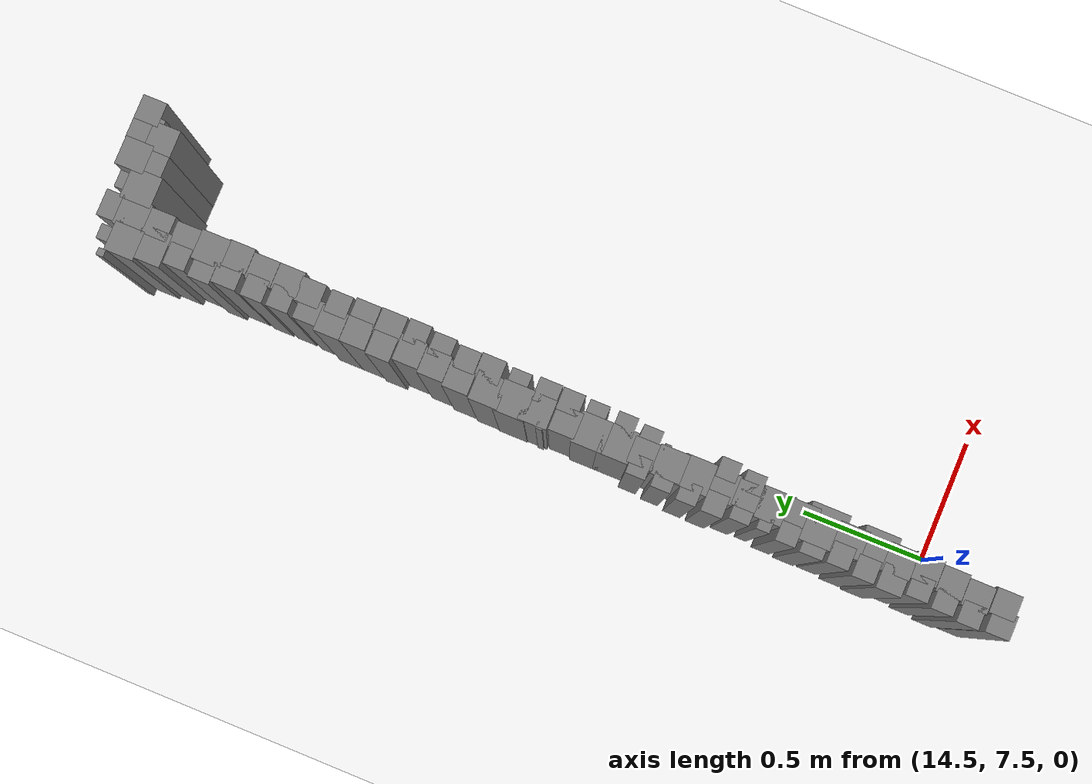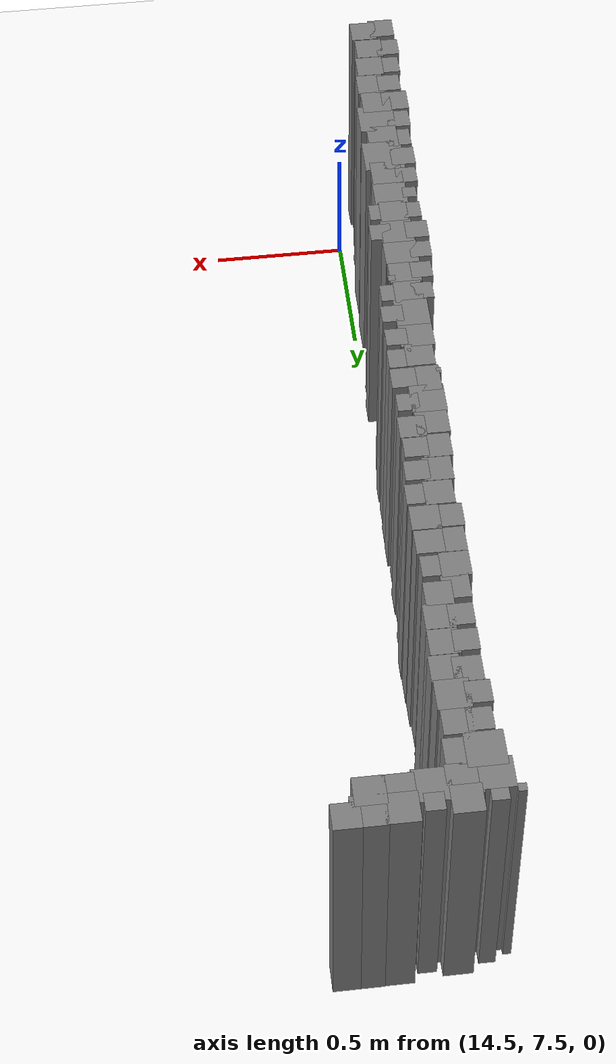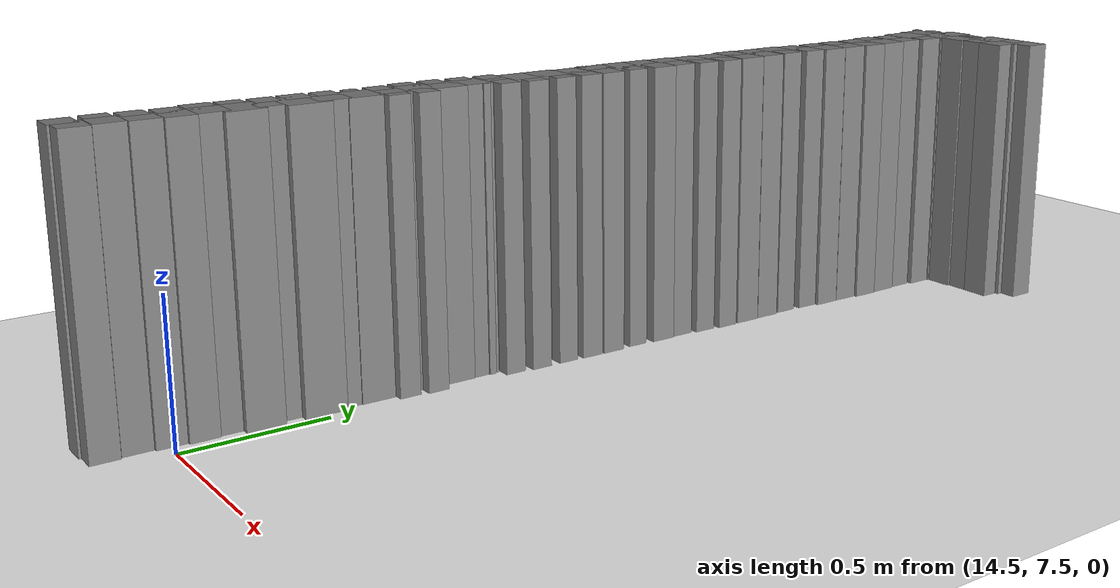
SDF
<sdf version="1.6">
 <world name="default">
  <model name="group_418">
   <pose>14.33 10.76 0.5 0 0 0</pose>
   <static>true</static>
   <link name="link">
    <collision name="collision">
     <geometry><box><size>0.02814025255821355 0.02814025255821355 1</size></box></geometry>
    </collision>
    <visual name="visual">
     <geometry><box><size>0.02814025255821355 0.02814025255821355 1</size></box></geometry>
     <material><ambient>0.5 0.5 0.5 1</ambient></material>
    </visual>
   </link>
  </model>
  <model name="group_419">
   <pose>14.42 10.61 0.5 0 0 0</pose>
   <static>true</static>
   <link name="link">
    <collision name="collision">
     <geometry><box><size>0.1268839573795072 0.1268839573795072 1</size></box></geometry>
    </collision>
    <visual name="visual">
     <geometry><box><size>0.1268839573795072 0.1268839573795072 1</size></box></geometry>
     <material><ambient>0.5 0.5 0.5 1</ambient></material>
    </visual>
   </link>
  </model>
  <model name="group_420">
   <pose>14.40 10.70 0.5 0 0 0</pose>
   <static>true</static>
   <link name="link">
    <collision name="collision">
     <geometry><box><size>0.11218382099302744 0.11218382099302744 1</size></box></geometry>
    </collision>
    <visual name="visual">
     <geometry><box><size>0.11218382099302744 0.11218382099302744 1</size></box></geometry>
     <material><ambient>0.5 0.5 0.5 1</ambient></material>
    </visual>
   </link>
  </model>
  <model name="group_421">
   <pose>14.40 10.77 0.5 0 0 0</pose>
   <static>true</static>
   <link name="link">
    <collision name="collision">
     <geometry><box><size>0.0562805051164271 0.0562805051164271 1</size></box></geometry>
    </collision>
    <visual name="visual">
     <geometry><box><size>0.0562805051164271 0.0562805051164271 1</size></box></geometry>
     <material><ambient>0.5 0.5 0.5 1</ambient></material>
    </visual>
   </link>
  </model>
  <model name="group_424">
   <pose>14.43 10.31 0.5 0 0 0</pose>
   <static>true</static>
   <link name="link">
    <collision name="collision">
     <geometry><box><size>0.09529608509633855 0.09529608509633855 1</size></box></geometry>
    </collision>
    <visual name="visual">
     <geometry><box><size>0.09529608509633855 0.09529608509633855 1</size></box></geometry>
     <material><ambient>0.5 0.5 0.5 1</ambient></material>
    </visual>
   </link>
  </model>
  <model name="group_425">
   <pose>14.41 10.40 0.5 0 0 0</pose>
   <static>true</static>
   <link name="link">
    <collision name="collision">
     <geometry><box><size>0.08368096618929591 0.08368096618929591 1</size></box></geometry>
    </collision>
    <visual name="visual">
     <geometry><box><size>0.08368096618929591 0.08368096618929591 1</size></box></geometry>
     <material><ambient>0.5 0.5 0.5 1</ambient></material>
    </visual>
   </link>
  </model>
  <model name="group_426">
   <pose>14.42 10.50 0.5 0 0 0</pose>
   <static>true</static>
   <link name="link">
    <collision name="collision">
     <geometry><box><size>0.08368096618929446 0.08368096618929446 1</size></box></geometry>
    </collision>
    <visual name="visual">
     <geometry><box><size>0.08368096618929446 0.08368096618929446 1</size></box></geometry>
     <material><ambient>0.5 0.5 0.5 1</ambient></material>
    </visual>
   </link>
  </model>
  <model name="group_427">
   <pose>14.40 9.70 0.5 0 0 0</pose>
   <static>true</static>
   <link name="link">
    <collision name="collision">
     <geometry><box><size>0.09244449216996942 0.09244449216996942 1</size></box></geometry>
    </collision>
    <visual name="visual">
     <geometry><box><size>0.09244449216996942 0.09244449216996942 1</size></box></geometry>
     <material><ambient>0.5 0.5 0.5 1</ambient></material>
    </visual>
   </link>
  </model>
  <model name="group_428">
   <pose>14.41 9.80 0.5 0 0 0</pose>
   <static>true</static>
   <link name="link">
    <collision name="collision">
     <geometry><box><size>0.09919226406566595 0.09919226406566595 1</size></box></geometry>
    </collision>
    <visual name="visual">
     <geometry><box><size>0.09919226406566595 0.09919226406566595 1</size></box></geometry>
     <material><ambient>0.5 0.5 0.5 1</ambient></material>
    </visual>
   </link>
  </model>
  <model name="group_429">
   <pose>14.41 9.90 0.5 0 0 0</pose>
   <static>true</static>
   <link name="link">
    <collision name="collision">
     <geometry><box><size>0.09919226406567594 0.09919226406567594 1</size></box></geometry>
    </collision>
    <visual name="visual">
     <geometry><box><size>0.09919226406567594 0.09919226406567594 1</size></box></geometry>
     <material><ambient>0.5 0.5 0.5 1</ambient></material>
    </visual>
   </link>
  </model>
  <model name="group_430">
   <pose>14.42 9.99 0.5 0 0 0</pose>
   <static>true</static>
   <link name="link">
    <collision name="collision">
     <geometry><box><size>0.09260882163759007 0.09260882163759007 1</size></box></geometry>
    </collision>
    <visual name="visual">
     <geometry><box><size>0.09260882163759007 0.09260882163759007 1</size></box></geometry>
     <material><ambient>0.5 0.5 0.5 1</ambient></material>
    </visual>
   </link>
  </model>
  <model name="group_431">
   <pose>14.42 10.10 0.5 0 0 0</pose>
   <static>true</static>
   <link name="link">
    <collision name="collision">
     <geometry><box><size>0.08368096618929412 0.08368096618929412 1</size></box></geometry>
    </collision>
    <visual name="visual">
     <geometry><box><size>0.08368096618929412 0.08368096618929412 1</size></box></geometry>
     <material><ambient>0.5 0.5 0.5 1</ambient></material>
    </visual>
   </link>
  </model>
  <model name="group_432">
   <pose>14.42 10.20 0.5 0 0 0</pose>
   <static>true</static>
   <link name="link">
    <collision name="collision">
     <geometry><box><size>0.08368096618929591 0.08368096618929591 1</size></box></geometry>
    </collision>
    <visual name="visual">
     <geometry><box><size>0.08368096618929591 0.08368096618929591 1</size></box></geometry>
     <material><ambient>0.5 0.5 0.5 1</ambient></material>
    </visual>
   </link>
  </model>
  <model name="group_433">
   <pose>14.50 10.71 0.5 0 0 0</pose>
   <static>true</static>
   <link name="link">
    <collision name="collision">
     <geometry><box><size>0.11218382099302872 0.11218382099302872 1</size></box></geometry>
    </collision>
    <visual name="visual">
     <geometry><box><size>0.11218382099302872 0.11218382099302872 1</size></box></geometry>
     <material><ambient>0.5 0.5 0.5 1</ambient></material>
    </visual>
   </link>
  </model>
  <model name="group_434">
   <pose>14.50 10.78 0.5 0 0 0</pose>
   <static>true</static>
   <link name="link">
    <collision name="collision">
     <geometry><box><size>0.1011409347177524 0.1011409347177524 1</size></box></geometry>
    </collision>
    <visual name="visual">
     <geometry><box><size>0.1011409347177524 0.1011409347177524 1</size></box></geometry>
     <material><ambient>0.5 0.5 0.5 1</ambient></material>
    </visual>
   </link>
  </model>
  <model name="group_436">
   <pose>14.34 9.03 0.5 0 0 0</pose>
   <static>true</static>
   <link name="link">
    <collision name="collision"><geometry><box><size>0.0 0.0 1</size></box></geometry></collision>
    <visual name="visual">
     <geometry><box><size>0.0 0.0 1</size></box></geometry>
     <material><ambient>0.5 0.5 0.5 1</ambient></material>
    </visual>
   </link>
  </model>
  <model name="group_437">
   <pose>14.35 9.07 0.5 0 0 0</pose>
   <static>true</static>
   <link name="link">
    <collision name="collision">
     <geometry><box><size>0.025275483471261958 0.025275483471261958 1</size></box></geometry>
    </collision>
    <visual name="visual">
     <geometry><box><size>0.025275483471261958 0.025275483471261958 1</size></box></geometry>
     <material><ambient>0.5 0.5 0.5 1</ambient></material>
    </visual>
   </link>
  </model>
  <model name="group_438">
   <pose>14.40 9.10 0.5 0 0 0</pose>
   <static>true</static>
   <link name="link">
    <collision name="collision">
     <geometry><box><size>0.11218382099302295 0.11218382099302295 1</size></box></geometry>
    </collision>
    <visual name="visual">
     <geometry><box><size>0.11218382099302295 0.11218382099302295 1</size></box></geometry>
     <material><ambient>0.5 0.5 0.5 1</ambient></material>
    </visual>
   </link>
  </model>
  <model name="group_439">
   <pose>14.40 9.19 0.5 0 0 0</pose>
   <static>true</static>
   <link name="link">
    <collision name="collision">
     <geometry><box><size>0.11941295585761769 0.11941295585761769 1</size></box></geometry>
    </collision>
    <visual name="visual">
     <geometry><box><size>0.11941295585761769 0.11941295585761769 1</size></box></geometry>
     <material><ambient>0.5 0.5 0.5 1</ambient></material>
    </visual>
   </link>
  </model>
  <model name="group_440">
   <pose>14.40 9.29 0.5 0 0 0</pose>
   <static>true</static>
   <link name="link">
    <collision name="collision">
     <geometry><box><size>0.11218382099301799 0.11218382099301799 1</size></box></geometry>
    </collision>
    <visual name="visual">
     <geometry><box><size>0.11218382099301799 0.11218382099301799 1</size></box></geometry>
     <material><ambient>0.5 0.5 0.5 1</ambient></material>
    </visual>
   </link>
  </model>
  <model name="group_441">
   <pose>14.40 9.40 0.5 0 0 0</pose>
   <static>true</static>
   <link name="link">
    <collision name="collision">
     <geometry><box><size>0.09919226406566595 0.09919226406566595 1</size></box></geometry>
    </collision>
    <visual name="visual">
     <geometry><box><size>0.09919226406566595 0.09919226406566595 1</size></box></geometry>
     <material><ambient>0.5 0.5 0.5 1</ambient></material>
    </visual>
   </link>
  </model>
  <model name="group_442">
   <pose>14.41 9.50 0.5 0 0 0</pose>
   <static>true</static>
   <link name="link">
    <collision name="collision">
     <geometry><box><size>0.09919226406567094 0.09919226406567094 1</size></box></geometry>
    </collision>
    <visual name="visual">
     <geometry><box><size>0.09919226406567094 0.09919226406567094 1</size></box></geometry>
     <material><ambient>0.5 0.5 0.5 1</ambient></material>
    </visual>
   </link>
  </model>
  <model name="group_443">
   <pose>14.42 9.60 0.5 0 0 0</pose>
   <static>true</static>
   <link name="link">
    <collision name="collision">
     <geometry><box><size>0.09919226406566818 0.09919226406566818 1</size></box></geometry>
    </collision>
    <visual name="visual">
     <geometry><box><size>0.09919226406566818 0.09919226406566818 1</size></box></geometry>
     <material><ambient>0.5 0.5 0.5 1</ambient></material>
    </visual>
   </link>
  </model>
  <model name="group_444">
   <pose>14.49 10.40 0.5 0 0 0</pose>
   <static>true</static>
   <link name="link">
    <collision name="collision">
     <geometry><box><size>0.1114520921337791 0.1114520921337791 1</size></box></geometry>
    </collision>
    <visual name="visual">
     <geometry><box><size>0.1114520921337791 0.1114520921337791 1</size></box></geometry>
     <material><ambient>0.5 0.5 0.5 1</ambient></material>
    </visual>
   </link>
  </model>
  <model name="group_445">
   <pose>14.49 10.50 0.5 0 0 0</pose>
   <static>true</static>
   <link name="link">
    <collision name="collision">
     <geometry><box><size>0.09919226406566373 0.09919226406566373 1</size></box></geometry>
    </collision>
    <visual name="visual">
     <geometry><box><size>0.09919226406566373 0.09919226406566373 1</size></box></geometry>
     <material><ambient>0.5 0.5 0.5 1</ambient></material>
    </visual>
   </link>
  </model>
  <model name="group_446">
   <pose>14.50 10.61 0.5 0 0 0</pose>
   <static>true</static>
   <link name="link">
    <collision name="collision">
     <geometry><box><size>0.09919226406566818 0.09919226406566818 1</size></box></geometry>
    </collision>
    <visual name="visual">
     <geometry><box><size>0.09919226406566818 0.09919226406566818 1</size></box></geometry>
     <material><ambient>0.5 0.5 0.5 1</ambient></material>
    </visual>
   </link>
  </model>
  <model name="group_448">
   <pose>14.33 8.39 0.5 0 0 0</pose>
   <static>true</static>
   <link name="link">
    <collision name="collision">
     <geometry><box><size>0.08157974353033265 0.08157974353033265 1</size></box></geometry>
    </collision>
    <visual name="visual">
     <geometry><box><size>0.08157974353033265 0.08157974353033265 1</size></box></geometry>
     <material><ambient>0.5 0.5 0.5 1</ambient></material>
    </visual>
   </link>
  </model>
  <model name="group_449">
   <pose>14.33 8.49 0.5 0 0 0</pose>
   <static>true</static>
   <link name="link">
    <collision name="collision">
     <geometry><box><size>0.07582645041378969 0.07582645041378969 1</size></box></geometry>
    </collision>
    <visual name="visual">
     <geometry><box><size>0.07582645041378969 0.07582645041378969 1</size></box></geometry>
     <material><ambient>0.5 0.5 0.5 1</ambient></material>
    </visual>
   </link>
  </model>
  <model name="group_450">
   <pose>14.34 8.59 0.5 0 0 0</pose>
   <static>true</static>
   <link name="link">
    <collision name="collision">
     <geometry><box><size>0.07582645041378969 0.07582645041378969 1</size></box></geometry>
    </collision>
    <visual name="visual">
     <geometry><box><size>0.07582645041378969 0.07582645041378969 1</size></box></geometry>
     <material><ambient>0.5 0.5 0.5 1</ambient></material>
    </visual>
   </link>
  </model>
  <model name="group_451">
   <pose>14.35 8.69 0.5 0 0 0</pose>
   <static>true</static>
   <link name="link">
    <collision name="collision">
     <geometry><box><size>0.07582645041378969 0.07582645041378969 1</size></box></geometry>
    </collision>
    <visual name="visual">
     <geometry><box><size>0.07582645041378969 0.07582645041378969 1</size></box></geometry>
     <material><ambient>0.5 0.5 0.5 1</ambient></material>
    </visual>
   </link>
  </model>
  <model name="group_452">
   <pose>14.40 8.79 0.5 0 0 0</pose>
   <static>true</static>
   <link name="link">
    <collision name="collision">
     <geometry><box><size>0.11941295585761537 0.11941295585761537 1</size></box></geometry>
    </collision>
    <visual name="visual">
     <geometry><box><size>0.11941295585761537 0.11941295585761537 1</size></box></geometry>
     <material><ambient>0.5 0.5 0.5 1</ambient></material>
    </visual>
   </link>
  </model>
  <model name="group_453">
   <pose>14.40 8.89 0.5 0 0 0</pose>
   <static>true</static>
   <link name="link">
    <collision name="collision">
     <geometry><box><size>0.11941295585761769 0.11941295585761769 1</size></box></geometry>
    </collision>
    <visual name="visual">
     <geometry><box><size>0.11941295585761769 0.11941295585761769 1</size></box></geometry>
     <material><ambient>0.5 0.5 0.5 1</ambient></material>
    </visual>
   </link>
  </model>
  <model name="group_454">
   <pose>14.40 8.99 0.5 0 0 0</pose>
   <static>true</static>
   <link name="link">
    <collision name="collision">
     <geometry><box><size>0.09919226406566818 0.09919226406566818 1</size></box></geometry>
    </collision>
    <visual name="visual">
     <geometry><box><size>0.09919226406566818 0.09919226406566818 1</size></box></geometry>
     <material><ambient>0.5 0.5 0.5 1</ambient></material>
    </visual>
   </link>
  </model>
  <model name="group_455">
   <pose>14.48 10.01 0.5 0 0 0</pose>
   <static>true</static>
   <link name="link">
    <collision name="collision">
     <geometry><box><size>0.09260882163759154 0.09260882163759154 1</size></box></geometry>
    </collision>
    <visual name="visual">
     <geometry><box><size>0.09260882163759154 0.09260882163759154 1</size></box></geometry>
     <material><ambient>0.5 0.5 0.5 1</ambient></material>
    </visual>
   </link>
  </model>
  <model name="group_456">
   <pose>14.49 10.10 0.5 0 0 0</pose>
   <static>true</static>
   <link name="link">
    <collision name="collision">
     <geometry><box><size>0.09919226406567094 0.09919226406567094 1</size></box></geometry>
    </collision>
    <visual name="visual">
     <geometry><box><size>0.09919226406567094 0.09919226406567094 1</size></box></geometry>
     <material><ambient>0.5 0.5 0.5 1</ambient></material>
    </visual>
   </link>
  </model>
  <model name="group_457">
   <pose>14.49 10.20 0.5 0 0 0</pose>
   <static>true</static>
   <link name="link">
    <collision name="collision">
     <geometry><box><size>0.09919226406566818 0.09919226406566818 1</size></box></geometry>
    </collision>
    <visual name="visual">
     <geometry><box><size>0.09919226406566818 0.09919226406566818 1</size></box></geometry>
     <material><ambient>0.5 0.5 0.5 1</ambient></material>
    </visual>
   </link>
  </model>
  <model name="group_458">
   <pose>14.50 10.30 0.5 0 0 0</pose>
   <static>true</static>
   <link name="link">
    <collision name="collision">
     <geometry><box><size>0.09919226406567042 0.09919226406567042 1</size></box></geometry>
    </collision>
    <visual name="visual">
     <geometry><box><size>0.09919226406567042 0.09919226406567042 1</size></box></geometry>
     <material><ambient>0.5 0.5 0.5 1</ambient></material>
    </visual>
   </link>
  </model>
  <model name="group_459">
   <pose>14.32 7.71 0.5 0 0 0</pose>
   <static>true</static>
   <link name="link">
    <collision name="collision">
     <geometry><box><size>0.0966621343048909 0.0966621343048909 1</size></box></geometry>
    </collision>
    <visual name="visual">
     <geometry><box><size>0.0966621343048909 0.0966621343048909 1</size></box></geometry>
     <material><ambient>0.5 0.5 0.5 1</ambient></material>
    </visual>
   </link>
  </model>
  <model name="group_460">
   <pose>14.32 7.81 0.5 0 0 0</pose>
   <static>true</static>
   <link name="link">
    <collision name="collision">
     <geometry><box><size>0.08368096618929753 0.08368096618929753 1</size></box></geometry>
    </collision>
    <visual name="visual">
     <geometry><box><size>0.08368096618929753 0.08368096618929753 1</size></box></geometry>
     <material><ambient>0.5 0.5 0.5 1</ambient></material>
    </visual>
   </link>
  </model>
  <model name="group_461">
   <pose>14.33 7.91 0.5 0 0 0</pose>
   <static>true</static>
   <link name="link">
    <collision name="collision">
     <geometry><box><size>0.08368096618929736 0.08368096618929736 1</size></box></geometry>
    </collision>
    <visual name="visual">
     <geometry><box><size>0.08368096618929736 0.08368096618929736 1</size></box></geometry>
     <material><ambient>0.5 0.5 0.5 1</ambient></material>
    </visual>
   </link>
  </model>
  <model name="group_462">
   <pose>14.33 8.01 0.5 0 0 0</pose>
   <static>true</static>
   <link name="link">
    <collision name="collision">
     <geometry><box><size>0.08740686806820615 0.08740686806820615 1</size></box></geometry>
    </collision>
    <visual name="visual">
     <geometry><box><size>0.08740686806820615 0.08740686806820615 1</size></box></geometry>
     <material><ambient>0.5 0.5 0.5 1</ambient></material>
    </visual>
   </link>
  </model>
  <model name="group_463">
   <pose>14.33 8.11 0.5 0 0 0</pose>
   <static>true</static>
   <link name="link">
    <collision name="collision">
     <geometry><box><size>0.07582645041378969 0.07582645041378969 1</size></box></geometry>
    </collision>
    <visual name="visual">
     <geometry><box><size>0.07582645041378969 0.07582645041378969 1</size></box></geometry>
     <material><ambient>0.5 0.5 0.5 1</ambient></material>
    </visual>
   </link>
  </model>
  <model name="group_464">
   <pose>14.33 8.20 0.5 0 0 0</pose>
   <static>true</static>
   <link name="link">
    <collision name="collision">
     <geometry><box><size>0.050550966942523916 0.050550966942523916 1</size></box></geometry>
    </collision>
    <visual name="visual">
     <geometry><box><size>0.050550966942523916 0.050550966942523916 1</size></box></geometry>
     <material><ambient>0.5 0.5 0.5 1</ambient></material>
    </visual>
   </link>
  </model>
  <model name="group_465">
   <pose>14.34 8.29 0.5 0 0 0</pose>
   <static>true</static>
   <link name="link">
    <collision name="collision">
     <geometry><box><size>0.07582645041378969 0.07582645041378969 1</size></box></geometry>
    </collision>
    <visual name="visual">
     <geometry><box><size>0.07582645041378969 0.07582645041378969 1</size></box></geometry>
     <material><ambient>0.5 0.5 0.5 1</ambient></material>
    </visual>
   </link>
  </model>
  <model name="group_466">
   <pose>14.40 8.39 0.5 0 0 0</pose>
   <static>true</static>
   <link name="link">
    <collision name="collision">
     <geometry><box><size>0.11218382099302375 0.11218382099302375 1</size></box></geometry>
    </collision>
    <visual name="visual">
     <geometry><box><size>0.11218382099302375 0.11218382099302375 1</size></box></geometry>
     <material><ambient>0.5 0.5 0.5 1</ambient></material>
    </visual>
   </link>
  </model>
  <model name="group_467">
   <pose>14.40 8.49 0.5 0 0 0</pose>
   <static>true</static>
   <link name="link">
    <collision name="collision">
     <geometry><box><size>0.11941295585761501 0.11941295585761501 1</size></box></geometry>
    </collision>
    <visual name="visual">
     <geometry><box><size>0.11941295585761501 0.11941295585761501 1</size></box></geometry>
     <material><ambient>0.5 0.5 0.5 1</ambient></material>
    </visual>
   </link>
  </model>
  <model name="group_468">
   <pose>14.40 8.59 0.5 0 0 0</pose>
   <static>true</static>
   <link name="link">
    <collision name="collision">
     <geometry><box><size>0.11218382099302872 0.11218382099302872 1</size></box></geometry>
    </collision>
    <visual name="visual">
     <geometry><box><size>0.11218382099302872 0.11218382099302872 1</size></box></geometry>
     <material><ambient>0.5 0.5 0.5 1</ambient></material>
    </visual>
   </link>
  </model>
  <model name="group_469">
   <pose>14.40 8.69 0.5 0 0 0</pose>
   <static>true</static>
   <link name="link">
    <collision name="collision">
     <geometry><box><size>0.0991922640656737 0.0991922640656737 1</size></box></geometry>
    </collision>
    <visual name="visual">
     <geometry><box><size>0.0991922640656737 0.0991922640656737 1</size></box></geometry>
     <material><ambient>0.5 0.5 0.5 1</ambient></material>
    </visual>
   </link>
  </model>
  <model name="group_470">
   <pose>14.48 9.70 0.5 0 0 0</pose>
   <static>true</static>
   <link name="link">
    <collision name="collision">
     <geometry><box><size>0.09919226406566649 0.09919226406566649 1</size></box></geometry>
    </collision>
    <visual name="visual">
     <geometry><box><size>0.09919226406566649 0.09919226406566649 1</size></box></geometry>
     <material><ambient>0.5 0.5 0.5 1</ambient></material>
    </visual>
   </link>
  </model>
  <model name="group_471">
   <pose>14.48 9.80 0.5 0 0 0</pose>
   <static>true</static>
   <link name="link">
    <collision name="collision">
     <geometry><box><size>0.0952960850963434 0.0952960850963434 1</size></box></geometry>
    </collision>
    <visual name="visual">
     <geometry><box><size>0.0952960850963434 0.0952960850963434 1</size></box></geometry>
     <material><ambient>0.5 0.5 0.5 1</ambient></material>
    </visual>
   </link>
  </model>
  <model name="group_472">
   <pose>14.48 9.90 0.5 0 0 0</pose>
   <static>true</static>
   <link name="link">
    <collision name="collision">
     <geometry><box><size>0.08368096618929736 0.08368096618929736 1</size></box></geometry>
    </collision>
    <visual name="visual">
     <geometry><box><size>0.08368096618929736 0.08368096618929736 1</size></box></geometry>
     <material><ambient>0.5 0.5 0.5 1</ambient></material>
    </visual>
   </link>
  </model>
  <model name="group_475">
   <pose>14.32 7.30 0.5 0 0 0</pose>
   <static>true</static>
   <link name="link">
    <collision name="collision">
     <geometry><box><size>0.09244449216996412 0.09244449216996412 1</size></box></geometry>
    </collision>
    <visual name="visual">
     <geometry><box><size>0.09244449216996412 0.09244449216996412 1</size></box></geometry>
     <material><ambient>0.5 0.5 0.5 1</ambient></material>
    </visual>
   </link>
  </model>
  <model name="group_476">
   <pose>14.31 7.41 0.5 0 0 0</pose>
   <static>true</static>
   <link name="link">
    <collision name="collision">
     <geometry><box><size>0.08368096618929736 0.08368096618929736 1</size></box></geometry>
    </collision>
    <visual name="visual">
     <geometry><box><size>0.08368096618929736 0.08368096618929736 1</size></box></geometry>
     <material><ambient>0.5 0.5 0.5 1</ambient></material>
    </visual>
   </link>
  </model>
  <model name="group_477">
   <pose>14.32 7.51 0.5 0 0 0</pose>
   <static>true</static>
   <link name="link">
    <collision name="collision">
     <geometry><box><size>0.08368096618929899 0.08368096618929899 1</size></box></geometry>
    </collision>
    <visual name="visual">
     <geometry><box><size>0.08368096618929899 0.08368096618929899 1</size></box></geometry>
     <material><ambient>0.5 0.5 0.5 1</ambient></material>
    </visual>
   </link>
  </model>
  <model name="group_478">
   <pose>14.33 7.61 0.5 0 0 0</pose>
   <static>true</static>
   <link name="link">
    <collision name="collision">
     <geometry><box><size>0.08368096618929591 0.08368096618929591 1</size></box></geometry>
    </collision>
    <visual name="visual">
     <geometry><box><size>0.08368096618929591 0.08368096618929591 1</size></box></geometry>
     <material><ambient>0.5 0.5 0.5 1</ambient></material>
    </visual>
   </link>
  </model>
  <model name="group_479">
   <pose>14.40 8.00 0.5 0 0 0</pose>
   <static>true</static>
   <link name="link">
    <collision name="collision">
     <geometry><box><size>0.14518907882641824 0.14518907882641824 1</size></box></geometry>
    </collision>
    <visual name="visual">
     <geometry><box><size>0.14518907882641824 0.14518907882641824 1</size></box></geometry>
     <material><ambient>0.5 0.5 0.5 1</ambient></material>
    </visual>
   </link>
  </model>
  <model name="group_480">
   <pose>14.40 8.09 0.5 0 0 0</pose>
   <static>true</static>
   <link name="link">
    <collision name="collision">
     <geometry><box><size>0.11145209213376835 0.11145209213376835 1</size></box></geometry>
    </collision>
    <visual name="visual">
     <geometry><box><size>0.11145209213376835 0.11145209213376835 1</size></box></geometry>
     <material><ambient>0.5 0.5 0.5 1</ambient></material>
    </visual>
   </link>
  </model>
  <model name="group_481">
   <pose>14.40 8.19 0.5 0 0 0</pose>
   <static>true</static>
   <link name="link">
    <collision name="collision">
     <geometry><box><size>0.11941295585761769 0.11941295585761769 1</size></box></geometry>
    </collision>
    <visual name="visual">
     <geometry><box><size>0.11941295585761769 0.11941295585761769 1</size></box></geometry>
     <material><ambient>0.5 0.5 0.5 1</ambient></material>
    </visual>
   </link>
  </model>
  <model name="group_482">
   <pose>14.40 8.29 0.5 0 0 0</pose>
   <static>true</static>
   <link name="link">
    <collision name="collision">
     <geometry><box><size>0.09919226406566818 0.09919226406566818 1</size></box></geometry>
    </collision>
    <visual name="visual">
     <geometry><box><size>0.09919226406566818 0.09919226406566818 1</size></box></geometry>
     <material><ambient>0.5 0.5 0.5 1</ambient></material>
    </visual>
   </link>
  </model>
  <model name="group_483">
   <pose>14.47 9.31 0.5 0 0 0</pose>
   <static>true</static>
   <link name="link">
    <collision name="collision">
     <geometry><box><size>0.0925489871736119 0.0925489871736119 1</size></box></geometry>
    </collision>
    <visual name="visual">
     <geometry><box><size>0.0925489871736119 0.0925489871736119 1</size></box></geometry>
     <material><ambient>0.5 0.5 0.5 1</ambient></material>
    </visual>
   </link>
  </model>
  <model name="group_484">
   <pose>14.47 9.40 0.5 0 0 0</pose>
   <static>true</static>
   <link name="link">
    <collision name="collision">
     <geometry><box><size>0.08368096618929736 0.08368096618929736 1</size></box></geometry>
    </collision>
    <visual name="visual">
     <geometry><box><size>0.08368096618929736 0.08368096618929736 1</size></box></geometry>
     <material><ambient>0.5 0.5 0.5 1</ambient></material>
    </visual>
   </link>
  </model>
  <model name="group_485">
   <pose>14.48 9.50 0.5 0 0 0</pose>
   <static>true</static>
   <link name="link">
    <collision name="collision">
     <geometry><box><size>0.0836809661892977 0.0836809661892977 1</size></box></geometry>
    </collision>
    <visual name="visual">
     <geometry><box><size>0.0836809661892977 0.0836809661892977 1</size></box></geometry>
     <material><ambient>0.5 0.5 0.5 1</ambient></material>
    </visual>
   </link>
  </model>
  <model name="group_486">
   <pose>14.49 9.60 0.5 0 0 0</pose>
   <static>true</static>
   <link name="link">
    <collision name="collision">
     <geometry><box><size>0.08368096618929736 0.08368096618929736 1</size></box></geometry>
    </collision>
    <visual name="visual">
     <geometry><box><size>0.08368096618929736 0.08368096618929736 1</size></box></geometry>
     <material><ambient>0.5 0.5 0.5 1</ambient></material>
    </visual>
   </link>
  </model>
  <model name="group_487">
   <pose>14.60 10.72 0.5 0 0 0</pose>
   <static>true</static>
   <link name="link">
    <collision name="collision">
     <geometry><box><size>0.11882612832553892 0.11882612832553892 1</size></box></geometry>
    </collision>
    <visual name="visual">
     <geometry><box><size>0.11882612832553892 0.11882612832553892 1</size></box></geometry>
     <material><ambient>0.5 0.5 0.5 1</ambient></material>
    </visual>
   </link>
  </model>
  <model name="group_488">
   <pose>14.60 10.78 0.5 0 0 0</pose>
   <static>true</static>
   <link name="link">
    <collision name="collision">
     <geometry><box><size>0.06413786030771658 0.06413786030771658 1</size></box></geometry>
    </collision>
    <visual name="visual">
     <geometry><box><size>0.06413786030771658 0.06413786030771658 1</size></box></geometry>
     <material><ambient>0.5 0.5 0.5 1</ambient></material>
    </visual>
   </link>
  </model>
  <model name="group_499">
   <pose>14.39 7.71 0.5 0 0 0</pose>
   <static>true</static>
   <link name="link">
    <collision name="collision">
     <geometry><box><size>0.10720809573338656 0.10720809573338656 1</size></box></geometry>
    </collision>
    <visual name="visual">
     <geometry><box><size>0.10720809573338656 0.10720809573338656 1</size></box></geometry>
     <material><ambient>0.5 0.5 0.5 1</ambient></material>
    </visual>
   </link>
  </model>
  <model name="group_500">
   <pose>14.40 7.80 0.5 0 0 0</pose>
   <static>true</static>
   <link name="link">
    <collision name="collision">
     <geometry><box><size>0.13199281036508517 0.13199281036508517 1</size></box></geometry>
    </collision>
    <visual name="visual">
     <geometry><box><size>0.13199281036508517 0.13199281036508517 1</size></box></geometry>
     <material><ambient>0.5 0.5 0.5 1</ambient></material>
    </visual>
   </link>
  </model>
  <model name="group_501">
   <pose>14.39 7.90 0.5 0 0 0</pose>
   <static>true</static>
   <link name="link">
    <collision name="collision">
     <geometry><box><size>0.11027156059254221 0.11027156059254221 1</size></box></geometry>
    </collision>
    <visual name="visual">
     <geometry><box><size>0.11027156059254221 0.11027156059254221 1</size></box></geometry>
     <material><ambient>0.5 0.5 0.5 1</ambient></material>
    </visual>
   </link>
  </model>
  <model name="group_502">
   <pose>14.47 9.00 0.5 0 0 0</pose>
   <static>true</static>
   <link name="link">
    <collision name="collision">
     <geometry><box><size>0.08368096618929591 0.08368096618929591 1</size></box></geometry>
    </collision>
    <visual name="visual">
     <geometry><box><size>0.08368096618929591 0.08368096618929591 1</size></box></geometry>
     <material><ambient>0.5 0.5 0.5 1</ambient></material>
    </visual>
   </link>
  </model>
  <model name="group_503">
   <pose>14.47 9.09 0.5 0 0 0</pose>
   <static>true</static>
   <link name="link">
    <collision name="collision">
     <geometry><box><size>0.08740686806820823 0.08740686806820823 1</size></box></geometry>
    </collision>
    <visual name="visual">
     <geometry><box><size>0.08740686806820823 0.08740686806820823 1</size></box></geometry>
     <material><ambient>0.5 0.5 0.5 1</ambient></material>
    </visual>
   </link>
  </model>
  <model name="group_504">
   <pose>14.47 9.20 0.5 0 0 0</pose>
   <static>true</static>
   <link name="link">
    <collision name="collision">
     <geometry><box><size>0.07582645041378969 0.07582645041378969 1</size></box></geometry>
    </collision>
    <visual name="visual">
     <geometry><box><size>0.07582645041378969 0.07582645041378969 1</size></box></geometry>
     <material><ambient>0.5 0.5 0.5 1</ambient></material>
    </visual>
   </link>
  </model>
  <model name="group_508">
   <pose>14.39 7.31 0.5 0 0 0</pose>
   <static>true</static>
   <link name="link">
    <collision name="collision">
     <geometry><box><size>0.09529608509633943 0.09529608509633943 1</size></box></geometry>
    </collision>
    <visual name="visual">
     <geometry><box><size>0.09529608509633943 0.09529608509633943 1</size></box></geometry>
     <material><ambient>0.5 0.5 0.5 1</ambient></material>
    </visual>
   </link>
  </model>
  <model name="group_509">
   <pose>14.38 7.41 0.5 0 0 0</pose>
   <static>true</static>
   <link name="link">
    <collision name="collision">
     <geometry><box><size>0.09919226406566871 0.09919226406566871 1</size></box></geometry>
    </collision>
    <visual name="visual">
     <geometry><box><size>0.09919226406566871 0.09919226406566871 1</size></box></geometry>
     <material><ambient>0.5 0.5 0.5 1</ambient></material>
    </visual>
   </link>
  </model>
  <model name="group_510">
   <pose>14.39 7.51 0.5 0 0 0</pose>
   <static>true</static>
   <link name="link">
    <collision name="collision">
     <geometry><box><size>0.09919226406566786 0.09919226406566786 1</size></box></geometry>
    </collision>
    <visual name="visual">
     <geometry><box><size>0.09919226406566786 0.09919226406566786 1</size></box></geometry>
     <material><ambient>0.5 0.5 0.5 1</ambient></material>
    </visual>
   </link>
  </model>
  <model name="group_511">
   <pose>14.40 7.61 0.5 0 0 0</pose>
   <static>true</static>
   <link name="link">
    <collision name="collision">
     <geometry><box><size>0.09919226406567094 0.09919226406567094 1</size></box></geometry>
    </collision>
    <visual name="visual">
     <geometry><box><size>0.09919226406567094 0.09919226406567094 1</size></box></geometry>
     <material><ambient>0.5 0.5 0.5 1</ambient></material>
    </visual>
   </link>
  </model>
  <model name="group_512">
   <pose>14.45 8.62 0.5 0 0 0</pose>
   <static>true</static>
   <link name="link">
    <collision name="collision">
     <geometry><box><size>0.025275483471261958 0.025275483471261958 1</size></box></geometry>
    </collision>
    <visual name="visual">
     <geometry><box><size>0.025275483471261958 0.025275483471261958 1</size></box></geometry>
     <material><ambient>0.5 0.5 0.5 1</ambient></material>
    </visual>
   </link>
  </model>
  <model name="group_513">
   <pose>14.46 8.69 0.5 0 0 0</pose>
   <static>true</static>
   <link name="link">
    <collision name="collision">
     <geometry><box><size>0.07582645041378969 0.07582645041378969 1</size></box></geometry>
    </collision>
    <visual name="visual">
     <geometry><box><size>0.07582645041378969 0.07582645041378969 1</size></box></geometry>
     <material><ambient>0.5 0.5 0.5 1</ambient></material>
    </visual>
   </link>
  </model>
  <model name="group_514">
   <pose>14.47 8.79 0.5 0 0 0</pose>
   <static>true</static>
   <link name="link">
    <collision name="collision">
     <geometry><box><size>0.07582645041378969 0.07582645041378969 1</size></box></geometry>
    </collision>
    <visual name="visual">
     <geometry><box><size>0.07582645041378969 0.07582645041378969 1</size></box></geometry>
     <material><ambient>0.5 0.5 0.5 1</ambient></material>
    </visual>
   </link>
  </model>
  <model name="group_515">
   <pose>14.47 8.90 0.5 0 0 0</pose>
   <static>true</static>
   <link name="link">
    <collision name="collision">
     <geometry><box><size>0.07582645041378941 0.07582645041378941 1</size></box></geometry>
    </collision>
    <visual name="visual">
     <geometry><box><size>0.07582645041378941 0.07582645041378941 1</size></box></geometry>
     <material><ambient>0.5 0.5 0.5 1</ambient></material>
    </visual>
   </link>
  </model>
  <model name="group_519">
   <pose>14.45 8.29 0.5 0 0 0</pose>
   <static>true</static>
   <link name="link">
    <collision name="collision">
     <geometry><box><size>0.07582645041378969 0.07582645041378969 1</size></box></geometry>
    </collision>
    <visual name="visual">
     <geometry><box><size>0.07582645041378969 0.07582645041378969 1</size></box></geometry>
     <material><ambient>0.5 0.5 0.5 1</ambient></material>
    </visual>
   </link>
  </model>
  <model name="group_520">
   <pose>14.46 8.39 0.5 0 0 0</pose>
   <static>true</static>
   <link name="link">
    <collision name="collision">
     <geometry><box><size>0.07582645041378969 0.07582645041378969 1</size></box></geometry>
    </collision>
    <visual name="visual">
     <geometry><box><size>0.07582645041378969 0.07582645041378969 1</size></box></geometry>
     <material><ambient>0.5 0.5 0.5 1</ambient></material>
    </visual>
   </link>
  </model>
  <model name="group_521">
   <pose>14.47 8.46 0.5 0 0 0</pose>
   <static>true</static>
   <link name="link">
    <collision name="collision"><geometry><box><size>0.0 0.0 1</size></box></geometry></collision>
    <visual name="visual">
     <geometry><box><size>0.0 0.0 1</size></box></geometry>
     <material><ambient>0.5 0.5 0.5 1</ambient></material>
    </visual>
   </link>
  </model>
  <model name="group_522">
   <pose>14.70 10.72 0.5 0 0 0</pose>
   <static>true</static>
   <link name="link">
    <collision name="collision">
     <geometry><box><size>0.10163463408692346 0.10163463408692346 1</size></box></geometry>
    </collision>
    <visual name="visual">
     <geometry><box><size>0.10163463408692346 0.10163463408692346 1</size></box></geometry>
     <material><ambient>0.5 0.5 0.5 1</ambient></material>
    </visual>
   </link>
  </model>
  <model name="group_523">
   <pose>14.70 10.79 0.5 0 0 0</pose>
   <static>true</static>
   <link name="link">
    <collision name="collision">
     <geometry><box><size>0.10929126842086616 0.10929126842086616 1</size></box></geometry>
    </collision>
    <visual name="visual">
     <geometry><box><size>0.10929126842086616 0.10929126842086616 1</size></box></geometry>
     <material><ambient>0.5 0.5 0.5 1</ambient></material>
    </visual>
   </link>
  </model>
  <model name="group_581">
   <pose>14.79 10.72 0.5 0 0 0</pose>
   <static>true</static>
   <link name="link">
    <collision name="collision">
     <geometry><box><size>0.10288911944020827 0.10288911944020827 1</size></box></geometry>
    </collision>
    <visual name="visual">
     <geometry><box><size>0.10288911944020827 0.10288911944020827 1</size></box></geometry>
     <material><ambient>0.5 0.5 0.5 1</ambient></material>
    </visual>
   </link>
  </model>
  <model name="group_582">
   <pose>14.80 10.79 0.5 0 0 0</pose>
   <static>true</static>
   <link name="link">
    <collision name="collision">
     <geometry><box><size>0.11218382099302872 0.11218382099302872 1</size></box></geometry>
    </collision>
    <visual name="visual">
     <geometry><box><size>0.11218382099302872 0.11218382099302872 1</size></box></geometry>
     <material><ambient>0.5 0.5 0.5 1</ambient></material>
    </visual>
   </link>
  </model>
  <model name="group_610">
   <pose>14.87 10.80 0.5 0 0 0</pose>
   <static>true</static>
   <link name="link">
    <collision name="collision">
     <geometry><box><size>0.0925489871736119 0.0925489871736119 1</size></box></geometry>
    </collision>
    <visual name="visual">
     <geometry><box><size>0.0925489871736119 0.0925489871736119 1</size></box></geometry>
     <material><ambient>0.5 0.5 0.5 1</ambient></material>
    </visual>
   </link>
  </model>
  <model name="group_616">
   <pose>14.87 10.73 0.5 0 0 0</pose>
   <static>true</static>
   <link name="link">
    <collision name="collision"><geometry><box><size>0.0 0.0 1</size></box></geometry></collision>
    <visual name="visual">
     <geometry><box><size>0.0 0.0 1</size></box></geometry>
     <material><ambient>0.5 0.5 0.5 1</ambient></material>
    </visual>
   </link>
  </model>
  <model name="ground_plane">
   <static>true</static>
   <link name="link">
    <collision name="collision">
     <geometry><plane><normal>0 0 1</normal><size>100 100</size></plane></geometry>
    </collision>
    <visual name="visual">
     <geometry><plane><normal>0 0 1</normal><size>100 100</size></plane></geometry>
     <material><ambient>1 1 1 1</ambient></material>
    </visual>
   </link>
  </model>
 </world>
</sdf>
